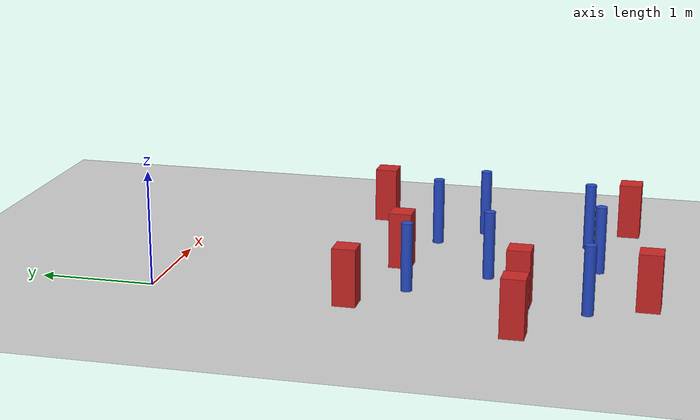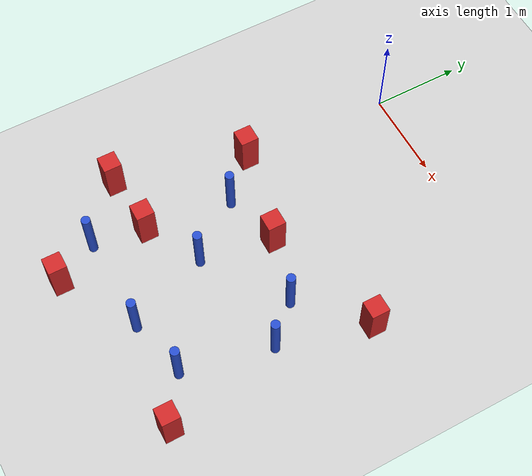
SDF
<sdf version="1.6">
 <world name="default">
  <model name="ground_plane">
   <static>1</static>
   <link name="link">
    <collision name="collision">
     <geometry><plane><normal>0 0 1</normal><size>100 100</size></plane></geometry>
     <surface><friction><ode><mu>100</mu><mu2>50</mu2></ode></friction></surface>
    </collision>
    <visual name="visual">
     <cast_shadows>0</cast_shadows>
     <geometry><plane><normal>0 0 1</normal><size>100 100</size></plane></geometry>
     <material>
      <ambient>1.0 1.0 1.0 1.0</ambient>
      <diffuse>0.8 0.8 0.8 1.0</diffuse>
      <specular>0.01 0.01 0.01 1.000000</specular>
     </material>
    </visual>
   </link>
  </model>
  <model name="pole_obstacle15">
   <static>true</static>
   <pose>1.24080618713 -3.68273115442 7.38925637345e-09 -8.47170692799e-08 1.24976765053e-08 -1.74513093017e-07</pose>
   <link name="link">
    <pose>0 0 0.3 0 -0 0</pose>
    <inertial>
     <mass>1</mass>
     <inertia><ixx>0.145833</ixx><ixy>0</ixy><ixz>0</ixz><iyy>0.145833</iyy><iyz>0</iyz><izz>0.125</izz></inertia>
    </inertial>
    <collision name="collision">
     <geometry><cylinder><radius>0.05</radius><length>.6</length></cylinder></geometry>
    </collision>
    <visual name="visual">
     <geometry><cylinder><radius>0.05</radius><length>.6</length></cylinder></geometry>
     <material>
      <script><name>Gazebo/Blue</name><uri>file://media/materials/scripts/gazebo.material</uri></script>
     </material>
    </visual>
   </link>
  </model>
  <model name="square_post_obstacle35">
   <static>true</static>
   <pose>0.264709637256 -3.11509529331 1.91545236811e-07 -7.35059704564e-06 1.12565212e-07 2.39332434364e-05</pose>
   <link name="link">
    <pose>0 0 0.25 0 -0 0</pose>
    <inertial>
     <mass>100</mass>
     <inertia>
      <ixx>0.166667</ixx>
      <ixy>0</ixy>
      <ixz>0</ixz>
      <iyy>0.166667</iyy>
      <iyz>0</iyz>
      <izz>0.166667</izz>
     </inertia>
    </inertial>
    <collision name="collision"><geometry><box><size>.2 .2 .5</size></box></geometry></collision>
    <visual name="visual">
     <geometry><box><size>.2 .2 .5</size></box></geometry>
     <material>
      <script><name>Gazebo/Red</name><uri>file://media/materials/scripts/gazebo.material</uri></script>
     </material>
    </visual>
   </link>
  </model>
  <model name="square_post_obstacle54">
   <static>true</static>
   <pose>2.38912613256 -1.54103098857 1.91545236811e-07 -7.35059704564e-06 1.12565212e-07 2.39332434364e-05</pose>
   <link name="link">
    <pose>0 0 0.25 0 -0 0</pose>
    <inertial>
     <mass>100</mass>
     <inertia>
      <ixx>0.166667</ixx>
      <ixy>0</ixy>
      <ixz>0</ixz>
      <iyy>0.166667</iyy>
      <iyz>0</iyz>
      <izz>0.166667</izz>
     </inertia>
    </inertial>
    <collision name="collision"><geometry><box><size>.2 .2 .5</size></box></geometry></collision>
    <visual name="visual">
     <geometry><box><size>.2 .2 .5</size></box></geometry>
     <material>
      <script><name>Gazebo/Red</name><uri>file://media/materials/scripts/gazebo.material</uri></script>
     </material>
    </visual>
   </link>
  </model>
  <model name="square_post_obstacle64">
   <static>true</static>
   <pose>-0.0418688581248 -1.72332712203 1.91545236811e-07 -7.35059704564e-06 1.12565212e-07 2.39332434364e-05</pose>
   <link name="link">
    <pose>0 0 0.25 0 -0 0</pose>
    <inertial>
     <mass>100</mass>
     <inertia>
      <ixx>0.166667</ixx>
      <ixy>0</ixy>
      <ixz>0</ixz>
      <iyy>0.166667</iyy>
      <iyz>0</iyz>
      <izz>0.166667</izz>
     </inertia>
    </inertial>
    <collision name="collision"><geometry><box><size>.2 .2 .5</size></box></geometry></collision>
    <visual name="visual">
     <geometry><box><size>.2 .2 .5</size></box></geometry>
     <material>
      <script><name>Gazebo/Red</name><uri>file://media/materials/scripts/gazebo.material</uri></script>
     </material>
    </visual>
   </link>
  </model>
  <model name="pole_obstacle98">
   <static>true</static>
   <pose>0.384641938088 -2.14388097945 7.38925637345e-09 -8.471706928e-08 1.24976765084e-08 -1.74513093017e-07</pose>
   <link name="link">
    <pose>0 0 0.3 0 -0 0</pose>
    <inertial>
     <mass>1</mass>
     <inertia><ixx>0.145833</ixx><ixy>0</ixy><ixz>0</ixz><iyy>0.145833</iyy><iyz>0</iyz><izz>0.125</izz></inertia>
    </inertial>
    <collision name="collision">
     <geometry><cylinder><radius>0.05</radius><length>.6</length></cylinder></geometry>
    </collision>
    <visual name="visual">
     <geometry><cylinder><radius>0.05</radius><length>.6</length></cylinder></geometry>
     <material>
      <script><name>Gazebo/Blue</name><uri>file://media/materials/scripts/gazebo.material</uri></script>
     </material>
    </visual>
   </link>
  </model>
  <model name="pole_obstacle124">
   <static>true</static>
   <pose>0.87080441848 -2.76658857675 7.38925637345e-09 -8.47170692799e-08 1.2497676509e-08 -1.74513093016e-07</pose>
   <link name="link">
    <pose>0 0 0.3 0 -0 0</pose>
    <inertial>
     <mass>1</mass>
     <inertia><ixx>0.145833</ixx><ixy>0</ixy><ixz>0</ixz><iyy>0.145833</iyy><iyz>0</iyz><izz>0.125</izz></inertia>
    </inertial>
    <collision name="collision">
     <geometry><cylinder><radius>0.05</radius><length>.6</length></cylinder></geometry>
    </collision>
    <visual name="visual">
     <geometry><cylinder><radius>0.05</radius><length>.6</length></cylinder></geometry>
     <material>
      <script><name>Gazebo/Blue</name><uri>file://media/materials/scripts/gazebo.material</uri></script>
     </material>
    </visual>
   </link>
  </model>
  <model name="square_post_obstacle117">
   <static>true</static>
   <pose>1.024690325 -1.96826591237 1.91545236811e-07 -7.35059704564e-06 1.12565212e-07 2.39332434364e-05</pose>
   <link name="link">
    <pose>0 0 0.25 0 -0 0</pose>
    <inertial>
     <mass>100</mass>
     <inertia>
      <ixx>0.166667</ixx>
      <ixy>0</ixy>
      <ixz>0</ixz>
      <iyy>0.166667</iyy>
      <iyz>0</iyz>
      <izz>0.166667</izz>
     </inertia>
    </inertial>
    <collision name="collision"><geometry><box><size>.2 .2 .5</size></box></geometry></collision>
    <visual name="visual">
     <geometry><box><size>.2 .2 .5</size></box></geometry>
     <material>
      <script><name>Gazebo/Red</name><uri>file://media/materials/scripts/gazebo.material</uri></script>
     </material>
    </visual>
   </link>
  </model>
  <model name="pole_obstacle139">
   <static>true</static>
   <pose>1.75220052929 -2.15895898228 7.38925637345e-09 -8.47170692799e-08 1.24976765053e-08 -1.74513093017e-07</pose>
   <link name="link">
    <pose>0 0 0.3 0 -0 0</pose>
    <inertial>
     <mass>1</mass>
     <inertia><ixx>0.145833</ixx><ixy>0</ixy><ixz>0</ixz><iyy>0.145833</iyy><iyz>0</iyz><izz>0.125</izz></inertia>
    </inertial>
    <collision name="collision">
     <geometry><cylinder><radius>0.05</radius><length>.6</length></cylinder></geometry>
    </collision>
    <visual name="visual">
     <geometry><cylinder><radius>0.05</radius><length>.6</length></cylinder></geometry>
     <material>
      <script><name>Gazebo/Blue</name><uri>file://media/materials/scripts/gazebo.material</uri></script>
     </material>
    </visual>
   </link>
  </model>
  <model name="square_post_obstacle126">
   <static>true</static>
   <pose>-0.438166486716 -3.17090479498 1.91545236811e-07 -7.35059704564e-06 1.12565212e-07 2.39332434364e-05</pose>
   <link name="link">
    <pose>0 0 0.25 0 -0 0</pose>
    <inertial>
     <mass>100</mass>
     <inertia>
      <ixx>0.166667</ixx>
      <ixy>0</ixy>
      <ixz>0</ixz>
      <iyy>0.166667</iyy>
      <iyz>0</iyz>
      <izz>0.166667</izz>
     </inertia>
    </inertial>
    <collision name="collision"><geometry><box><size>.2 .2 .5</size></box></geometry></collision>
    <visual name="visual">
     <geometry><box><size>.2 .2 .5</size></box></geometry>
     <material>
      <script><name>Gazebo/Red</name><uri>file://media/materials/scripts/gazebo.material</uri></script>
     </material>
    </visual>
   </link>
  </model>
  <model name="square_post_obstacle127">
   <static>true</static>
   <pose>0.41379510753 -4.16923032119 1.91545236811e-07 -7.35059704564e-06 1.12565212e-07 2.39332434364e-05</pose>
   <link name="link">
    <pose>0 0 0.25 0 -0 0</pose>
    <inertial>
     <mass>100</mass>
     <inertia>
      <ixx>0.166667</ixx>
      <ixy>0</ixy>
      <ixz>0</ixz>
      <iyy>0.166667</iyy>
      <iyz>0</iyz>
      <izz>0.166667</izz>
     </inertia>
    </inertial>
    <collision name="collision"><geometry><box><size>.2 .2 .5</size></box></geometry></collision>
    <visual name="visual">
     <geometry><box><size>.2 .2 .5</size></box></geometry>
     <material>
      <script><name>Gazebo/Red</name><uri>file://media/materials/scripts/gazebo.material</uri></script>
     </material>
    </visual>
   </link>
  </model>
  <model name="square_post_obstacle129">
   <static>true</static>
   <pose>2.39956887521 -3.85616389181 1.91545236811e-07 -7.35059704564e-06 1.12565212e-07 2.39332434364e-05</pose>
   <link name="link">
    <pose>0 0 0.25 0 -0 0</pose>
    <inertial>
     <mass>100</mass>
     <inertia>
      <ixx>0.166667</ixx>
      <ixy>0</ixy>
      <ixz>0</ixz>
      <iyy>0.166667</iyy>
      <iyz>0</iyz>
      <izz>0.166667</izz>
     </inertia>
    </inertial>
    <collision name="collision"><geometry><box><size>.2 .2 .5</size></box></geometry></collision>
    <visual name="visual">
     <geometry><box><size>.2 .2 .5</size></box></geometry>
     <material>
      <script><name>Gazebo/Red</name><uri>file://media/materials/scripts/gazebo.material</uri></script>
     </material>
    </visual>
   </link>
  </model>
  <model name="pole_obstacle152">
   <static>true</static>
   <pose>0.164203151626 -3.69427712803 7.38925637345e-09 -8.47170692792e-08 1.24976764391e-08 -1.74513093041e-07</pose>
   <link name="link">
    <pose>0 0 0.3 0 -0 0</pose>
    <inertial>
     <mass>1</mass>
     <inertia><ixx>0.145833</ixx><ixy>0</ixy><ixz>0</ixz><iyy>0.145833</iyy><iyz>0</iyz><izz>0.125</izz></inertia>
    </inertial>
    <collision name="collision">
     <geometry><cylinder><radius>0.05</radius><length>.6</length></cylinder></geometry>
    </collision>
    <visual name="visual">
     <geometry><cylinder><radius>0.05</radius><length>.6</length></cylinder></geometry>
     <material>
      <script><name>Gazebo/Blue</name><uri>file://media/materials/scripts/gazebo.material</uri></script>
     </material>
    </visual>
   </link>
  </model>
  <model name="pole_obstacle168">
   <static>true</static>
   <pose>2.12409285321 -2.53881342992 7.38925637345e-09 -8.47170692798e-08 1.24976764939e-08 -1.74513093025e-07</pose>
   <link name="link">
    <pose>0 0 0.3 0 -0 0</pose>
    <inertial>
     <mass>1</mass>
     <inertia><ixx>0.145833</ixx><ixy>0</ixy><ixz>0</ixz><iyy>0.145833</iyy><iyz>0</iyz><izz>0.125</izz></inertia>
    </inertial>
    <collision name="collision">
     <geometry><cylinder><radius>0.05</radius><length>.6</length></cylinder></geometry>
    </collision>
    <visual name="visual">
     <geometry><cylinder><radius>0.05</radius><length>.6</length></cylinder></geometry>
     <material>
      <script><name>Gazebo/Blue</name><uri>file://media/materials/scripts/gazebo.material</uri></script>
     </material>
    </visual>
   </link>
  </model>
  <model name="pole_obstacle175">
   <static>true</static>
   <pose>1.9072760167 -3.52783521221 7.38925637345e-09 -8.47170692799e-08 1.24976765053e-08 -1.74513093017e-07</pose>
   <link name="link">
    <pose>0 0 0.3 0 -0 0</pose>
    <inertial>
     <mass>1</mass>
     <inertia><ixx>0.145833</ixx><ixy>0</ixy><ixz>0</ixz><iyy>0.145833</iyy><iyz>0</iyz><izz>0.125</izz></inertia>
    </inertial>
    <collision name="collision">
     <geometry><cylinder><radius>0.05</radius><length>.6</length></cylinder></geometry>
    </collision>
    <visual name="visual">
     <geometry><cylinder><radius>0.05</radius><length>.6</length></cylinder></geometry>
     <material>
      <script><name>Gazebo/Blue</name><uri>file://media/materials/scripts/gazebo.material</uri></script>
     </material>
    </visual>
   </link>
  </model>
 </world>
</sdf>
